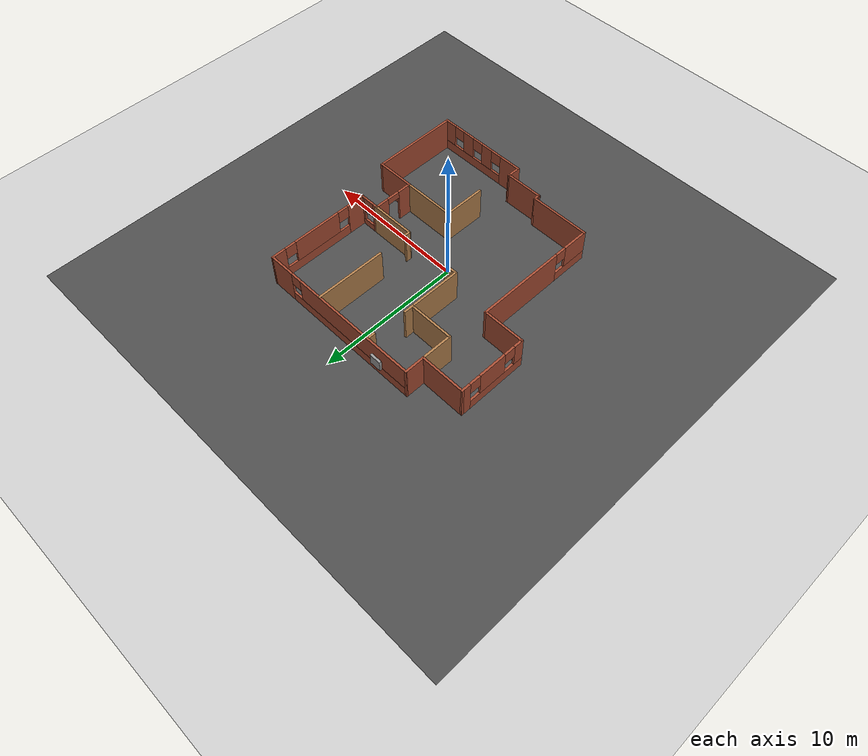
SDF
<sdf version="1.7">
 <world name="default">
  <light name="sun" type="directional">
   <pose>0 0 10 0 -0 0</pose>
   <diffuse>0.8 0.8 0.8 1</diffuse>
   <specular>0.2 0.2 0.2 1</specular>
   <attenuation>
    <range>1000</range>
    <constant>0.9</constant>
    <linear>0.01</linear>
    <quadratic>0.001</quadratic>
   </attenuation>
   <direction>-0.5 0.1 -0.9</direction>
   <spot><inner_angle>0</inner_angle><outer_angle>0</outer_angle><falloff>0</falloff></spot>
  </light>
  <model name="ground_plane">
   <static>1</static>
   <link name="link">
    <collision name="collision">
     <geometry><plane><normal>0 0 1</normal><size>100 100</size></plane></geometry>
     <surface><friction><ode><mu>100</mu><mu2>50</mu2></ode></friction></surface>
    </collision>
    <visual name="visual">
     <cast_shadows>0</cast_shadows>
     <geometry><plane><normal>0 0 1</normal><size>100 100</size></plane></geometry>
     <material>
      <script><uri>file://media/materials/scripts/gazebo.material</uri><name>Gazebo/Grey</name></script>
     </material>
    </visual>
   </link>
  </model>
  <gravity>0 0 -9.8</gravity>
  <magnetic_field>6e-06 2.3e-05 -4.2e-05</magnetic_field>
  <atmosphere type="adiabatic"/>
  <physics type="ode">
   <max_step_size>0.001</max_step_size>
   <real_time_factor>1</real_time_factor>
   <real_time_update_rate>1000</real_time_update_rate>
  </physics>
  <scene><ambient>0.4 0.4 0.4 1</ambient><background>0.7 0.7 0.7 1</background><shadows>1</shadows></scene>
  <spherical_coordinates>
   <surface_model>EARTH_WGS84</surface_model>
   <latitude_deg>0</latitude_deg>
   <longitude_deg>0</longitude_deg>
   <elevation>0</elevation>
   <heading_deg>0</heading_deg>
  </spherical_coordinates>
  <model name="house">
   <pose>0.09028 0.07914 0 0 -0 0</pose>
   <link name="Wall_0">
    <collision name="Wall_0_Collision">
     <geometry><box><size>3.25 0.15 2.5</size></box></geometry>
     <pose>0 0 1.25 0 -0 0</pose>
    </collision>
    <visual name="Wall_0_Visual">
     <pose>0 0 1.25 0 -0 0</pose>
     <geometry><box><size>3.25 0.15 2.5</size></box></geometry>
     <material>
      <script><uri>file://media/materials/scripts/gazebo.material</uri><name>Gazebo/Bricks</name></script>
      <ambient>1 1 1 1</ambient>
     </material>
     <meta><layer>0</layer></meta>
    </visual>
    <pose>-6.525 6.74982 0 0 -0 3.14159</pose>
   </link>
   <link name="Wall_1">
    <pose>-8.075 4.32482 0 0 -0 -1.5708</pose>
    <visual name="Wall_1_Visual_0">
     <pose>-2.16045 0 1.25 0 -0 0</pose>
     <geometry><box><size>0.679108 0.15 2.5</size></box></geometry>
     <material>
      <script><uri>file://media/materials/scripts/gazebo.material</uri><name>Gazebo/Bricks</name></script>
      <ambient>1 1 1 1</ambient>
     </material>
     <meta><layer>0</layer></meta>
    </visual>
    <collision name="Wall_1_Collision_0">
     <geometry><box><size>0.679108 0.15 2.5</size></box></geometry>
     <pose>-2.16045 0 1.25 0 -0 0</pose>
    </collision>
    <visual name="Wall_1_Visual_1">
     <pose>0.339554 0 0.375 0 -0 0</pose>
     <geometry><box><size>4.32089 0.15 0.75</size></box></geometry>
     <material>
      <script><uri>file://media/materials/scripts/gazebo.material</uri><name>Gazebo/Bricks</name></script>
      <ambient>1 1 1 1</ambient>
     </material>
     <meta><layer>0</layer></meta>
    </visual>
    <collision name="Wall_1_Collision_1">
     <geometry><box><size>4.32089 0.15 0.75</size></box></geometry>
     <pose>0.339554 0 0.375 0 -0 0</pose>
    </collision>
    <visual name="Wall_1_Visual_2">
     <pose>-0.008469 0 1.625 0 -0 0</pose>
     <geometry><box><size>2.02485 0.15 1.75</size></box></geometry>
     <material>
      <script><uri>file://media/materials/scripts/gazebo.material</uri><name>Gazebo/Bricks</name></script>
      <ambient>1 1 1 1</ambient>
     </material>
     <meta><layer>0</layer></meta>
    </visual>
    <collision name="Wall_1_Collision_2">
     <geometry><box><size>2.02485 0.15 1.75</size></box></geometry>
     <pose>-0.008469 0 1.625 0 -0 0</pose>
    </collision>
    <visual name="Wall_1_Visual_3">
     <pose>2.15198 0 1.625 0 -0 0</pose>
     <geometry><box><size>0.696045 0.15 1.75</size></box></geometry>
     <material>
      <script><uri>file://media/materials/scripts/gazebo.material</uri><name>Gazebo/Bricks</name></script>
      <ambient>1 1 1 1</ambient>
     </material>
     <meta><layer>0</layer></meta>
    </visual>
    <collision name="Wall_1_Collision_3">
     <geometry><box><size>0.696045 0.15 1.75</size></box></geometry>
     <pose>2.15198 0 1.625 0 -0 0</pose>
    </collision>
    <visual name="Wall_1_Visual_4">
     <pose>-1.42089 0 2.025 0 -0 0</pose>
     <geometry><box><size>0.8 0.15 0.95</size></box></geometry>
     <material>
      <script><uri>file://media/materials/scripts/gazebo.material</uri><name>Gazebo/Bricks</name></script>
      <ambient>1 1 1 1</ambient>
     </material>
     <meta><layer>0</layer></meta>
    </visual>
    <collision name="Wall_1_Collision_4">
     <geometry><box><size>0.8 0.15 0.95</size></box></geometry>
     <pose>-1.42089 0 2.025 0 -0 0</pose>
    </collision>
    <visual name="Wall_1_Visual_5">
     <pose>1.40396 0 2.025 0 -0 0</pose>
     <geometry><box><size>0.8 0.15 0.95</size></box></geometry>
     <material>
      <script><uri>file://media/materials/scripts/gazebo.material</uri><name>Gazebo/Bricks</name></script>
      <ambient>1 1 1 1</ambient>
     </material>
     <meta><layer>0</layer></meta>
    </visual>
    <collision name="Wall_1_Collision_5">
     <geometry><box><size>0.8 0.15 0.95</size></box></geometry>
     <pose>1.40396 0 2.025 0 -0 0</pose>
    </collision>
   </link>
   <link name="Wall_10">
    <collision name="Wall_10_Collision">
     <geometry><box><size>2.75 0.15 2.5</size></box></geometry>
     <pose>0 0 1.25 0 -0 0</pose>
    </collision>
    <visual name="Wall_10_Visual">
     <pose>0 0 1.25 0 -0 0</pose>
     <geometry><box><size>2.75 0.15 2.5</size></box></geometry>
     <material>
      <script><uri>file://media/materials/scripts/gazebo.material</uri><name>Gazebo/Bricks</name></script>
      <ambient>1 1 1 1</ambient>
     </material>
     <meta><layer>0</layer></meta>
    </visual>
    <pose>6.775 -2.05018 0 0 -0 3.14159</pose>
   </link>
   <link name="Wall_11">
    <pose>5.475 -0.625181 0 0 -0 1.5708</pose>
    <visual name="Wall_11_Visual_0">
     <pose>-0.971381 0 1.25 0 -0 0</pose>
     <geometry><box><size>1.05724 0.15 2.5</size></box></geometry>
     <material>
      <script><uri>file://media/materials/scripts/gazebo.material</uri><name>Gazebo/Bricks</name></script>
      <ambient>1 1 1 1</ambient>
     </material>
     <meta><layer>0</layer></meta>
    </visual>
    <collision name="Wall_11_Collision_0">
     <geometry><box><size>1.05724 0.15 2.5</size></box></geometry>
     <pose>-0.971381 0 1.25 0 -0 0</pose>
    </collision>
    <visual name="Wall_11_Visual_1">
     <pose>0.978619 0 1.25 0 -0 0</pose>
     <geometry><box><size>1.04276 0.15 2.5</size></box></geometry>
     <material>
      <script><uri>file://media/materials/scripts/gazebo.material</uri><name>Gazebo/Bricks</name></script>
      <ambient>1 1 1 1</ambient>
     </material>
     <meta><layer>0</layer></meta>
    </visual>
    <collision name="Wall_11_Collision_1">
     <geometry><box><size>1.04276 0.15 2.5</size></box></geometry>
     <pose>0.978619 0 1.25 0 -0 0</pose>
    </collision>
    <visual name="Wall_11_Visual_2">
     <pose>0.007238 0 2.25 0 -0 0</pose>
     <geometry><box><size>0.9 0.15 0.5</size></box></geometry>
     <material>
      <script><uri>file://media/materials/scripts/gazebo.material</uri><name>Gazebo/Bricks</name></script>
      <ambient>1 1 1 1</ambient>
     </material>
     <meta><layer>0</layer></meta>
    </visual>
    <collision name="Wall_11_Collision_2">
     <geometry><box><size>0.9 0.15 0.5</size></box></geometry>
     <pose>0.007238 0 2.25 0 -0 0</pose>
    </collision>
   </link>
   <link name="Wall_12">
    <pose>6.15 0.799819 0 0 -0 0</pose>
    <visual name="Wall_12_Visual_0">
     <pose>-0.552106 0 1.25 0 -0 0</pose>
     <geometry><box><size>0.395787 0.15 2.5</size></box></geometry>
     <material>
      <script><uri>file://media/materials/scripts/gazebo.material</uri><name>Gazebo/Bricks</name></script>
      <ambient>1 1 1 1</ambient>
     </material>
     <meta><layer>0</layer></meta>
    </visual>
    <collision name="Wall_12_Collision_0">
     <geometry><box><size>0.395787 0.15 2.5</size></box></geometry>
     <pose>-0.552106 0 1.25 0 -0 0</pose>
    </collision>
    <visual name="Wall_12_Visual_1">
     <pose>0.197894 0 0.25 0 -0 0</pose>
     <geometry><box><size>1.10421 0.15 0.5</size></box></geometry>
     <material>
      <script><uri>file://media/materials/scripts/gazebo.material</uri><name>Gazebo/Bricks</name></script>
      <ambient>1 1 1 1</ambient>
     </material>
     <meta><layer>0</layer></meta>
    </visual>
    <collision name="Wall_12_Collision_1">
     <geometry><box><size>1.10421 0.15 0.5</size></box></geometry>
     <pose>0.197894 0 0.25 0 -0 0</pose>
    </collision>
    <visual name="Wall_12_Visual_2">
     <pose>0.597894 0 1.5 0 -0 0</pose>
     <geometry><box><size>0.304213 0.15 2</size></box></geometry>
     <material>
      <script><uri>file://media/materials/scripts/gazebo.material</uri><name>Gazebo/Bricks</name></script>
      <ambient>1 1 1 1</ambient>
     </material>
     <meta><layer>0</layer></meta>
    </visual>
    <collision name="Wall_12_Collision_2">
     <geometry><box><size>0.304213 0.15 2</size></box></geometry>
     <pose>0.597894 0 1.5 0 -0 0</pose>
    </collision>
    <visual name="Wall_12_Visual_3">
     <pose>0.045787 0 1.9 0 -0 0</pose>
     <geometry><box><size>0.8 0.15 1.2</size></box></geometry>
     <material>
      <script><uri>file://media/materials/scripts/gazebo.material</uri><name>Gazebo/Bricks</name></script>
      <ambient>1 1 1 1</ambient>
     </material>
     <meta><layer>0</layer></meta>
    </visual>
    <collision name="Wall_12_Collision_3">
     <geometry><box><size>0.8 0.15 1.2</size></box></geometry>
     <pose>0.045787 0 1.9 0 -0 0</pose>
    </collision>
   </link>
   <link name="Wall_13">
    <pose>6.825 4.47482 0 0 -0 1.5708</pose>
    <visual name="Wall_13_Visual_0">
     <pose>-3.05778 0 1.25 0 -0 0</pose>
     <geometry><box><size>1.38445 0.15 2.5</size></box></geometry>
     <material>
      <script><uri>file://media/materials/scripts/gazebo.material</uri><name>Gazebo/Bricks</name></script>
      <ambient>1 1 1 1</ambient>
     </material>
     <meta><layer>0</layer></meta>
    </visual>
    <collision name="Wall_13_Collision_0">
     <geometry><box><size>1.38445 0.15 2.5</size></box></geometry>
     <pose>-3.05778 0 1.25 0 -0 0</pose>
    </collision>
    <visual name="Wall_13_Visual_1">
     <pose>0.692223 0 0.375 0 -0 0</pose>
     <geometry><box><size>6.11555 0.15 0.75</size></box></geometry>
     <material>
      <script><uri>file://media/materials/scripts/gazebo.material</uri><name>Gazebo/Bricks</name></script>
      <ambient>1 1 1 1</ambient>
     </material>
     <meta><layer>0</layer></meta>
    </visual>
    <collision name="Wall_13_Collision_1">
     <geometry><box><size>6.11555 0.15 0.75</size></box></geometry>
     <pose>0.692223 0 0.375 0 -0 0</pose>
    </collision>
    <visual name="Wall_13_Visual_2">
     <pose>0.178592 0 1.625 0 -0 0</pose>
     <geometry><box><size>3.48829 0.15 1.75</size></box></geometry>
     <material>
      <script><uri>file://media/materials/scripts/gazebo.material</uri><name>Gazebo/Bricks</name></script>
      <ambient>1 1 1 1</ambient>
     </material>
     <meta><layer>0</layer></meta>
    </visual>
    <collision name="Wall_13_Collision_2">
     <geometry><box><size>3.48829 0.15 1.75</size></box></geometry>
     <pose>0.178592 0 1.625 0 -0 0</pose>
    </collision>
    <visual name="Wall_13_Visual_3">
     <pose>3.23637 0 1.625 0 -0 0</pose>
     <geometry><box><size>1.02726 0.15 1.75</size></box></geometry>
     <material>
      <script><uri>file://media/materials/scripts/gazebo.material</uri><name>Gazebo/Bricks</name></script>
      <ambient>1 1 1 1</ambient>
     </material>
     <meta><layer>0</layer></meta>
    </visual>
    <collision name="Wall_13_Collision_3">
     <geometry><box><size>1.02726 0.15 1.75</size></box></geometry>
     <pose>3.23637 0 1.625 0 -0 0</pose>
    </collision>
    <visual name="Wall_13_Visual_4">
     <pose>-1.96555 0 2.025 0 -0 0</pose>
     <geometry><box><size>0.8 0.15 0.95</size></box></geometry>
     <material>
      <script><uri>file://media/materials/scripts/gazebo.material</uri><name>Gazebo/Bricks</name></script>
      <ambient>1 1 1 1</ambient>
     </material>
     <meta><layer>0</layer></meta>
    </visual>
    <collision name="Wall_13_Collision_4">
     <geometry><box><size>0.8 0.15 0.95</size></box></geometry>
     <pose>-1.96555 0 2.025 0 -0 0</pose>
    </collision>
    <visual name="Wall_13_Visual_5">
     <pose>2.32274 0 2.025 0 -0 0</pose>
     <geometry><box><size>0.8 0.15 0.95</size></box></geometry>
     <material>
      <script><uri>file://media/materials/scripts/gazebo.material</uri><name>Gazebo/Bricks</name></script>
      <ambient>1 1 1 1</ambient>
     </material>
     <meta><layer>0</layer></meta>
    </visual>
    <collision name="Wall_13_Collision_5">
     <geometry><box><size>0.8 0.15 0.95</size></box></geometry>
     <pose>2.32274 0 2.025 0 -0 0</pose>
    </collision>
   </link>
   <link name="Wall_14">
    <pose>0.92287 8.12123 0 0 -0 -3.13675</pose>
    <visual name="Wall_14_Visual_0">
     <pose>-5.02359 0 1.25 0 -0 0</pose>
     <geometry><box><size>1.90722 0.15 2.5</size></box></geometry>
     <material>
      <script><uri>file://media/materials/scripts/gazebo.material</uri><name>Gazebo/Bricks</name></script>
      <ambient>1 1 1 1</ambient>
     </material>
     <meta><layer>0</layer></meta>
    </visual>
    <collision name="Wall_14_Collision_0">
     <geometry><box><size>1.90722 0.15 2.5</size></box></geometry>
     <pose>-5.02359 0 1.25 0 -0 0</pose>
    </collision>
    <visual name="Wall_14_Visual_1">
     <pose>0.953612 0 0.375 0 -0 0</pose>
     <geometry><box><size>10.0472 0.15 0.75</size></box></geometry>
     <material>
      <script><uri>file://media/materials/scripts/gazebo.material</uri><name>Gazebo/Bricks</name></script>
      <ambient>1 1 1 1</ambient>
     </material>
     <meta><layer>0</layer></meta>
    </visual>
    <collision name="Wall_14_Collision_1">
     <geometry><box><size>10.0472 0.15 0.75</size></box></geometry>
     <pose>0.953612 0 0.375 0 -0 0</pose>
    </collision>
    <visual name="Wall_14_Visual_2">
     <pose>1.35361 0 1.625 0 -0 0</pose>
     <geometry><box><size>9.24718 0.15 1.75</size></box></geometry>
     <material>
      <script><uri>file://media/materials/scripts/gazebo.material</uri><name>Gazebo/Bricks</name></script>
      <ambient>1 1 1 1</ambient>
     </material>
     <meta><layer>0</layer></meta>
    </visual>
    <collision name="Wall_14_Collision_2">
     <geometry><box><size>9.24718 0.15 1.75</size></box></geometry>
     <pose>1.35361 0 1.625 0 -0 0</pose>
    </collision>
    <visual name="Wall_14_Visual_3">
     <pose>-3.66997 0 2.025 0 -0 0</pose>
     <geometry><box><size>0.8 0.15 0.95</size></box></geometry>
     <material>
      <script><uri>file://media/materials/scripts/gazebo.material</uri><name>Gazebo/Bricks</name></script>
      <ambient>1 1 1 1</ambient>
     </material>
     <meta><layer>0</layer></meta>
    </visual>
    <collision name="Wall_14_Collision_3">
     <geometry><box><size>0.8 0.15 0.95</size></box></geometry>
     <pose>-3.66997 0 2.025 0 -0 0</pose>
    </collision>
   </link>
   <link name="Wall_15">
    <collision name="Wall_15_Collision">
     <geometry><box><size>1.5 0.15 2.5</size></box></geometry>
     <pose>0 0 1.25 0 -0 0</pose>
    </collision>
    <visual name="Wall_15_Visual">
     <pose>0 0 1.25 0 -0 0</pose>
     <geometry><box><size>1.5 0.15 2.5</size></box></geometry>
     <material>
      <script><uri>file://media/materials/scripts/gazebo.material</uri><name>Gazebo/Bricks</name></script>
      <ambient>1 1 1 1</ambient>
     </material>
     <meta><layer>0</layer></meta>
    </visual>
    <pose>-4.97926 7.42336 0 0 -0 -1.5708</pose>
   </link>
   <link name="Wall_17">
    <collision name="Wall_17_Collision">
     <geometry><box><size>2.25 0.15 2.5</size></box></geometry>
     <pose>0 0 1.25 0 -0 0</pose>
    </collision>
    <visual name="Wall_17_Visual">
     <pose>0 0 1.25 0 -0 0</pose>
     <geometry><box><size>2.25 0.15 2.5</size></box></geometry>
     <material>
      <script><uri>file://media/materials/scripts/gazebo.material</uri><name>Gazebo/Wood</name></script>
      <ambient>1 1 1 1</ambient>
     </material>
     <meta><layer>0</layer></meta>
    </visual>
    <pose>-4.97926 5.69836 0 0 -0 -1.5708</pose>
   </link>
   <link name="Wall_18">
    <collision name="Wall_18_Collision">
     <geometry><box><size>3.25 0.15 2.5</size></box></geometry>
     <pose>0 0 1.25 0 -0 0</pose>
    </collision>
    <visual name="Wall_18_Visual">
     <pose>0 0 1.25 0 -0 0</pose>
     <geometry><box><size>3.25 0.15 2.5</size></box></geometry>
     <material>
      <script><uri>file://media/materials/scripts/gazebo.material</uri><name>Gazebo/Wood</name></script>
      <ambient>1 1 1 1</ambient>
     </material>
     <meta><layer>0</layer></meta>
    </visual>
    <pose>-3.42926 4.64836 0 0 -0 0</pose>
   </link>
   <link name="Wall_2">
    <collision name="Wall_2_Collision">
     <geometry><box><size>3 0.15 2.5</size></box></geometry>
     <pose>0 0 1.25 0 -0 0</pose>
    </collision>
    <visual name="Wall_2_Visual">
     <pose>0 0 1.25 0 -0 0</pose>
     <geometry><box><size>3 0.15 2.5</size></box></geometry>
     <material>
      <script><uri>file://media/materials/scripts/gazebo.material</uri><name>Gazebo/Bricks</name></script>
      <ambient>1 1 1 1</ambient>
     </material>
     <meta><layer>0</layer></meta>
    </visual>
    <pose>-6.65 1.89982 0 0 -0 0</pose>
   </link>
   <link name="Wall_20">
    <collision name="Wall_20_Collision">
     <geometry><box><size>0.75 0.15 2.5</size></box></geometry>
     <pose>0 0 1.25 0 -0 0</pose>
    </collision>
    <visual name="Wall_20_Visual">
     <pose>0 0 1.25 0 -0 0</pose>
     <geometry><box><size>0.75 0.15 2.5</size></box></geometry>
     <material>
      <script><uri>file://media/materials/scripts/gazebo.material</uri><name>Gazebo/Wood</name></script>
      <ambient>1 1 1 1</ambient>
     </material>
     <meta><layer>0</layer></meta>
    </visual>
    <pose>-1.88386 4.94858 0 0 -0 1.5708</pose>
   </link>
   <link name="Wall_22">
    <collision name="Wall_22_Collision">
     <geometry><box><size>0.5 0.15 2.5</size></box></geometry>
     <pose>0 0 1.25 0 -0 0</pose>
    </collision>
    <visual name="Wall_22_Visual">
     <pose>0 0 1.25 0 -0 0</pose>
     <geometry><box><size>0.5 0.15 2.5</size></box></geometry>
     <material>
      <script><uri>file://media/materials/scripts/gazebo.material</uri><name>Gazebo/Wood</name></script>
      <ambient>1 1 1 1</ambient>
     </material>
     <meta><layer>0</layer></meta>
    </visual>
    <pose>-1.77212 7.78882 0 0 -0 1.5708</pose>
   </link>
   <link name="Wall_25">
    <collision name="Wall_25_Collision">
     <geometry><box><size>3.75 0.15 2.5</size></box></geometry>
     <pose>0 0 1.25 0 -0 0</pose>
    </collision>
    <visual name="Wall_25_Visual">
     <pose>0 0 1.25 0 -0 0</pose>
     <geometry><box><size>3.75 0.15 2.5</size></box></geometry>
     <material>
      <script><uri>file://media/materials/scripts/gazebo.material</uri><name>Gazebo/Wood</name></script>
      <ambient>1 1 1 1</ambient>
     </material>
     <meta><layer>0</layer></meta>
    </visual>
    <pose>-1.88386 2.84858 0 0 -0 -1.5708</pose>
   </link>
   <link name="Wall_26">
    <collision name="Wall_26_Collision">
     <geometry><box><size>1 0.15 2.5</size></box></geometry>
     <pose>0 0 1.25 0 -0 0</pose>
    </collision>
    <visual name="Wall_26_Visual">
     <pose>0 0 1.25 0 -0 0</pose>
     <geometry><box><size>1 0.15 2.5</size></box></geometry>
     <material>
      <script><uri>file://media/materials/scripts/gazebo.material</uri><name>Gazebo/Wood</name></script>
      <ambient>1 1 1 1</ambient>
     </material>
     <meta><layer>0</layer></meta>
    </visual>
    <pose>-1.45886 1.04858 0 0 -0 0</pose>
   </link>
   <link name="Wall_28">
    <collision name="Wall_28_Collision">
     <geometry><box><size>5 0.15 2.5</size></box></geometry>
     <pose>0 0 1.25 0 -0 0</pose>
    </collision>
    <visual name="Wall_28_Visual">
     <pose>0 0 1.25 0 -0 0</pose>
     <geometry><box><size>5 0.15 2.5</size></box></geometry>
     <material>
      <script><uri>file://media/materials/scripts/gazebo.material</uri><name>Gazebo/Wood</name></script>
      <ambient>1 1 1 1</ambient>
     </material>
     <meta><layer>0</layer></meta>
    </visual>
    <pose>2.45282 5.68605 0 0 -0 1.5708</pose>
   </link>
   <link name="Wall_3">
    <pose>-5.225 -2.52518 0 0 -0 -1.5708</pose>
    <visual name="Wall_3_Visual_0">
     <pose>-1.34785 0 1.25 0 -0 0</pose>
     <geometry><box><size>6.30431 0.15 2.5</size></box></geometry>
     <material>
      <script><uri>file://media/materials/scripts/gazebo.material</uri><name>Gazebo/Bricks</name></script>
      <ambient>1 1 1 1</ambient>
     </material>
     <meta><layer>0</layer></meta>
    </visual>
    <collision name="Wall_3_Collision_0">
     <geometry><box><size>6.30431 0.15 2.5</size></box></geometry>
     <pose>-1.34785 0 1.25 0 -0 0</pose>
    </collision>
    <visual name="Wall_3_Visual_1">
     <pose>3.15215 0 0.375 0 -0 0</pose>
     <geometry><box><size>2.69569 0.15 0.75</size></box></geometry>
     <material>
      <script><uri>file://media/materials/scripts/gazebo.material</uri><name>Gazebo/Bricks</name></script>
      <ambient>1 1 1 1</ambient>
     </material>
     <meta><layer>0</layer></meta>
    </visual>
    <collision name="Wall_3_Collision_1">
     <geometry><box><size>2.69569 0.15 0.75</size></box></geometry>
     <pose>3.15215 0 0.375 0 -0 0</pose>
    </collision>
    <visual name="Wall_3_Visual_2">
     <pose>3.55215 0 1.625 0 -0 0</pose>
     <geometry><box><size>1.89569 0.15 1.75</size></box></geometry>
     <material>
      <script><uri>file://media/materials/scripts/gazebo.material</uri><name>Gazebo/Bricks</name></script>
      <ambient>1 1 1 1</ambient>
     </material>
     <meta><layer>0</layer></meta>
    </visual>
    <collision name="Wall_3_Collision_2">
     <geometry><box><size>1.89569 0.15 1.75</size></box></geometry>
     <pose>3.55215 0 1.625 0 -0 0</pose>
    </collision>
    <visual name="Wall_3_Visual_3">
     <pose>2.20431 0 2.025 0 -0 0</pose>
     <geometry><box><size>0.8 0.15 0.95</size></box></geometry>
     <material>
      <script><uri>file://media/materials/scripts/gazebo.material</uri><name>Gazebo/Bricks</name></script>
      <ambient>1 1 1 1</ambient>
     </material>
     <meta><layer>0</layer></meta>
    </visual>
    <collision name="Wall_3_Collision_3">
     <geometry><box><size>0.8 0.15 0.95</size></box></geometry>
     <pose>2.20431 0 2.025 0 -0 0</pose>
    </collision>
   </link>
   <link name="Wall_30">
    <collision name="Wall_30_Collision">
     <geometry><box><size>0.432914 0.15 2.5</size></box></geometry>
     <pose>0 0 1.25 0 -0 0</pose>
    </collision>
    <visual name="Wall_30_Visual">
     <pose>0 0 1.25 0 -0 0</pose>
     <geometry><box><size>0.432914 0.15 2.5</size></box></geometry>
     <material>
      <script><uri>file://media/materials/scripts/gazebo.material</uri><name>Gazebo/Wood</name></script>
      <ambient>1 1 1 1</ambient>
     </material>
     <meta><layer>0</layer></meta>
    </visual>
    <pose>2.44967 0.961972 0 0 -0 -1.51701</pose>
   </link>
   <link name="Wall_31">
    <collision name="Wall_31_Collision">
     <geometry><box><size>3.25 0.15 2.5</size></box></geometry>
     <pose>0 0 1.25 0 -0 0</pose>
    </collision>
    <visual name="Wall_31_Visual">
     <pose>0 0 1.25 0 -0 0</pose>
     <geometry><box><size>3.25 0.15 2.5</size></box></geometry>
     <material>
      <script><uri>file://media/materials/scripts/gazebo.material</uri><name>Gazebo/Wood</name></script>
      <ambient>1 1 1 1</ambient>
     </material>
     <meta><layer>0</layer></meta>
    </visual>
    <pose>4.00727 0.805511 0 0 -0 0</pose>
   </link>
   <link name="Wall_33">
    <collision name="Wall_33_Collision">
     <geometry><box><size>3.75 0.15 2.5</size></box></geometry>
     <pose>0 0 1.25 0 -0 0</pose>
    </collision>
    <visual name="Wall_33_Visual">
     <pose>0 0 1.25 0 -0 0</pose>
     <geometry><box><size>3.75 0.15 2.5</size></box></geometry>
     <material>
      <script><uri>file://media/materials/scripts/gazebo.material</uri><name>Gazebo/Wood</name></script>
      <ambient>1 1 1 1</ambient>
     </material>
     <meta><layer>0</layer></meta>
    </visual>
    <pose>3.675 -2.05018 0 0 -0 3.14159</pose>
   </link>
   <link name="Wall_34">
    <collision name="Wall_34_Collision">
     <geometry><box><size>3 0.15 2.5</size></box></geometry>
     <pose>0 0 1.25 0 -0 0</pose>
    </collision>
    <visual name="Wall_34_Visual">
     <pose>0 0 1.25 0 -0 0</pose>
     <geometry><box><size>3 0.15 2.5</size></box></geometry>
     <material>
      <script><uri>file://media/materials/scripts/gazebo.material</uri><name>Gazebo/Wood</name></script>
      <ambient>1 1 1 1</ambient>
     </material>
     <meta><layer>0</layer></meta>
    </visual>
    <pose>1.875 -3.47518 0 0 -0 -1.5708</pose>
   </link>
   <link name="Wall_4">
    <collision name="Wall_4_Collision">
     <geometry><box><size>4.25 0.15 2.5</size></box></geometry>
     <pose>0 0 1.25 0 -0 0</pose>
    </collision>
    <visual name="Wall_4_Visual">
     <pose>0 0 1.25 0 -0 0</pose>
     <geometry><box><size>4.25 0.15 2.5</size></box></geometry>
     <material>
      <script><uri>file://media/materials/scripts/gazebo.material</uri><name>Gazebo/Bricks</name></script>
      <ambient>1 1 1 1</ambient>
     </material>
     <meta><layer>0</layer></meta>
    </visual>
    <pose>-3.175 -6.95018 0 0 -0 0</pose>
   </link>
   <link name="Wall_5">
    <collision name="Wall_5_Collision">
     <geometry><box><size>0.5 0.15 2.5</size></box></geometry>
     <pose>0 0 1.25 0 -0 0</pose>
    </collision>
    <visual name="Wall_5_Visual">
     <pose>0 0 1.25 0 -0 0</pose>
     <geometry><box><size>0.5 0.15 2.5</size></box></geometry>
     <material>
      <script><uri>file://media/materials/scripts/gazebo.material</uri><name>Gazebo/Bricks</name></script>
      <ambient>1 1 1 1</ambient>
     </material>
     <meta><layer>0</layer></meta>
    </visual>
    <pose>-1.125 -7.12518 0 0 -0 -1.5708</pose>
   </link>
   <link name="Wall_6">
    <collision name="Wall_6_Collision">
     <geometry><box><size>2.75 0.15 2.5</size></box></geometry>
     <pose>0 0 1.25 0 -0 0</pose>
    </collision>
    <visual name="Wall_6_Visual">
     <pose>0 0 1.25 0 -0 0</pose>
     <geometry><box><size>2.75 0.15 2.5</size></box></geometry>
     <material>
      <script><uri>file://media/materials/scripts/gazebo.material</uri><name>Gazebo/Bricks</name></script>
      <ambient>1 1 1 1</ambient>
     </material>
     <meta><layer>0</layer></meta>
    </visual>
    <pose>0.175 -7.30018 0 0 -0 0</pose>
   </link>
   <link name="Wall_7">
    <collision name="Wall_7_Collision">
     <geometry><box><size>1 0.15 2.5</size></box></geometry>
     <pose>0 0 1.25 0 -0 0</pose>
    </collision>
    <visual name="Wall_7_Visual">
     <pose>0 0 1.25 0 -0 0</pose>
     <geometry><box><size>1 0.15 2.5</size></box></geometry>
     <material>
      <script><uri>file://media/materials/scripts/gazebo.material</uri><name>Gazebo/Bricks</name></script>
      <ambient>1 1 1 1</ambient>
     </material>
     <meta><layer>0</layer></meta>
    </visual>
    <pose>1.475 -7.72518 0 0 -0 -1.5708</pose>
   </link>
   <link name="Wall_8">
    <pose>4.775 -8.15018 0 0 -0 0</pose>
    <visual name="Wall_8_Visual_0">
     <pose>-2.55743 0 1.25 0 -0 0</pose>
     <geometry><box><size>1.63514 0.15 2.5</size></box></geometry>
     <material>
      <script><uri>file://media/materials/scripts/gazebo.material</uri><name>Gazebo/Bricks</name></script>
      <ambient>1 1 1 1</ambient>
     </material>
     <meta><layer>0</layer></meta>
    </visual>
    <collision name="Wall_8_Collision_0">
     <geometry><box><size>1.63514 0.15 2.5</size></box></geometry>
     <pose>-2.55743 0 1.25 0 -0 0</pose>
    </collision>
    <visual name="Wall_8_Visual_1">
     <pose>0.817571 0 0.375 0 -0 0</pose>
     <geometry><box><size>5.11486 0.15 0.75</size></box></geometry>
     <material>
      <script><uri>file://media/materials/scripts/gazebo.material</uri><name>Gazebo/Bricks</name></script>
      <ambient>1 1 1 1</ambient>
     </material>
     <meta><layer>0</layer></meta>
    </visual>
    <collision name="Wall_8_Collision_1">
     <geometry><box><size>5.11486 0.15 0.75</size></box></geometry>
     <pose>0.817571 0 0.375 0 -0 0</pose>
    </collision>
    <visual name="Wall_8_Visual_2">
     <pose>-0.495567 0 1.625 0 -0 0</pose>
     <geometry><box><size>0.888581 0.15 1.75</size></box></geometry>
     <material>
      <script><uri>file://media/materials/scripts/gazebo.material</uri><name>Gazebo/Bricks</name></script>
      <ambient>1 1 1 1</ambient>
     </material>
     <meta><layer>0</layer></meta>
    </visual>
    <collision name="Wall_8_Collision_2">
     <geometry><box><size>0.888581 0.15 1.75</size></box></geometry>
     <pose>-0.495567 0 1.625 0 -0 0</pose>
    </collision>
    <visual name="Wall_8_Visual_3">
     <pose>1.20721 0 1.625 0 -0 0</pose>
     <geometry><box><size>0.91698 0.15 1.75</size></box></geometry>
     <material>
      <script><uri>file://media/materials/scripts/gazebo.material</uri><name>Gazebo/Bricks</name></script>
      <ambient>1 1 1 1</ambient>
     </material>
     <meta><layer>0</layer></meta>
    </visual>
    <collision name="Wall_8_Collision_3">
     <geometry><box><size>0.91698 0.15 1.75</size></box></geometry>
     <pose>1.20721 0 1.625 0 -0 0</pose>
    </collision>
    <visual name="Wall_8_Visual_4">
     <pose>2.92035 0 1.625 0 -0 0</pose>
     <geometry><box><size>0.909297 0.15 1.75</size></box></geometry>
     <material>
      <script><uri>file://media/materials/scripts/gazebo.material</uri><name>Gazebo/Bricks</name></script>
      <ambient>1 1 1 1</ambient>
     </material>
     <meta><layer>0</layer></meta>
    </visual>
    <collision name="Wall_8_Collision_4">
     <geometry><box><size>0.909297 0.15 1.75</size></box></geometry>
     <pose>2.92035 0 1.625 0 -0 0</pose>
    </collision>
    <visual name="Wall_8_Visual_5">
     <pose>-1.33986 0 2.025 0 -0 0</pose>
     <geometry><box><size>0.8 0.15 0.95</size></box></geometry>
     <material>
      <script><uri>file://media/materials/scripts/gazebo.material</uri><name>Gazebo/Bricks</name></script>
      <ambient>1 1 1 1</ambient>
     </material>
     <meta><layer>0</layer></meta>
    </visual>
    <collision name="Wall_8_Collision_5">
     <geometry><box><size>0.8 0.15 0.95</size></box></geometry>
     <pose>-1.33986 0 2.025 0 -0 0</pose>
    </collision>
    <visual name="Wall_8_Visual_6">
     <pose>0.348723 0 2.025 0 -0 0</pose>
     <geometry><box><size>0.8 0.15 0.95</size></box></geometry>
     <material>
      <script><uri>file://media/materials/scripts/gazebo.material</uri><name>Gazebo/Bricks</name></script>
      <ambient>1 1 1 1</ambient>
     </material>
     <meta><layer>0</layer></meta>
    </visual>
    <collision name="Wall_8_Collision_6">
     <geometry><box><size>0.8 0.15 0.95</size></box></geometry>
     <pose>0.348723 0 2.025 0 -0 0</pose>
    </collision>
    <visual name="Wall_8_Visual_7">
     <pose>2.0657 0 2.025 0 -0 0</pose>
     <geometry><box><size>0.8 0.15 0.95</size></box></geometry>
     <material>
      <script><uri>file://media/materials/scripts/gazebo.material</uri><name>Gazebo/Bricks</name></script>
      <ambient>1 1 1 1</ambient>
     </material>
     <meta><layer>0</layer></meta>
    </visual>
    <collision name="Wall_8_Collision_7">
     <geometry><box><size>0.8 0.15 0.95</size></box></geometry>
     <pose>2.0657 0 2.025 0 -0 0</pose>
    </collision>
   </link>
   <link name="Wall_9">
    <collision name="Wall_9_Collision">
     <geometry><box><size>6.25 0.15 2.5</size></box></geometry>
     <pose>0 0 1.25 0 -0 0</pose>
    </collision>
    <visual name="Wall_9_Visual">
     <pose>0 0 1.25 0 -0 0</pose>
     <geometry><box><size>6.25 0.15 2.5</size></box></geometry>
     <material>
      <script><uri>file://media/materials/scripts/gazebo.material</uri><name>Gazebo/Bricks</name></script>
      <ambient>1 1 1 1</ambient>
     </material>
     <meta><layer>0</layer></meta>
    </visual>
    <pose>8.075 -5.10018 0 0 -0 1.5708</pose>
   </link>
   <link name="Window_9">
    <collision name="Window_9_Collision">
     <geometry><box><size>0.8 0.17 0.8</size></box></geometry>
     <pose>0 0 0.4 0 -0 0</pose>
    </collision>
    <visual name="Window_9_Visual">
     <pose>0 0 0.4 0 -0 0</pose>
     <geometry><box><size>0.8 0.17 0.8</size></box></geometry>
     <material>
      <script><uri>file://media/materials/scripts/gazebo.material</uri><name>Gazebo/Grey</name></script>
     </material>
    </visual>
    <pose>-2.60963 8.29441 0.75 0 -0 0</pose>
   </link>
   <static>1</static>
  </model>
  <model name="asphalt_plane">
   <static>1</static>
   <link name="link">
    <collision name="collision"><geometry><box><size>35.3465 35.5294 0.1</size></box></geometry></collision>
    <visual name="visual">
     <cast_shadows>0</cast_shadows>
     <geometry><box><size>35.3465 35.5294 0.1</size></box></geometry>
     <material>
      <script>
       <uri>model://asphalt_plane/materials/scripts</uri>
       <uri>model://asphalt_plane/materials/textures</uri>
       <name>vrc/asphalt</name>
      </script>
     </material>
    </visual>
   </link>
   <pose>0.001755 0.575816 -0.1 0 -0 0</pose>
  </model>
  <model name="bookshelf">
   <static>1</static>
   <link name="link">
    <inertial><mass>1</mass></inertial>
    <collision name="back">
     <pose>0 0.005 0.6 0 -0 0</pose>
     <geometry><box><size>0.9 0.01 1.2</size></box></geometry>
    </collision>
    <visual name="visual1">
     <pose>0 0.005 0.6 0 -0 0</pose>
     <geometry><box><size>0.9 0.01 1.2</size></box></geometry>
     <material>
      <script><uri>file://media/materials/scripts/gazebo.material</uri><name>Gazebo/Wood</name></script>
     </material>
    </visual>
    <collision name="left_side">
     <pose>0.45 -0.195 0.6 0 -0 0</pose>
     <geometry><box><size>0.02 0.4 1.2</size></box></geometry>
    </collision>
    <visual name="visual2">
     <pose>0.45 -0.195 0.6 0 -0 0</pose>
     <geometry><box><size>0.02 0.4 1.2</size></box></geometry>
     <material>
      <script><uri>file://media/materials/scripts/gazebo.material</uri><name>Gazebo/Wood</name></script>
     </material>
    </visual>
    <collision name="right_side">
     <pose>-0.45 -0.195 0.6 0 -0 0</pose>
     <geometry><box><size>0.02 0.4 1.2</size></box></geometry>
    </collision>
    <visual name="visual3">
     <pose>-0.45 -0.195 0.6 0 -0 0</pose>
     <geometry><box><size>0.02 0.4 1.2</size></box></geometry>
     <material>
      <script><uri>file://media/materials/scripts/gazebo.material</uri><name>Gazebo/Wood</name></script>
     </material>
    </visual>
    <collision name="bottom">
     <pose>0 -0.195 0.03 0 -0 0</pose>
     <geometry><box><size>0.88 0.4 0.06</size></box></geometry>
    </collision>
    <visual name="visual4">
     <pose>0 -0.195 0.03 0 -0 0</pose>
     <geometry><box><size>0.88 0.4 0.06</size></box></geometry>
     <material>
      <script><uri>file://media/materials/scripts/gazebo.material</uri><name>Gazebo/Wood</name></script>
     </material>
    </visual>
    <collision name="top">
     <pose>0 -0.195 1.19 0 -0 0</pose>
     <geometry><box><size>0.88 0.4 0.02</size></box></geometry>
    </collision>
    <visual name="visual5">
     <pose>0 -0.195 1.19 0 -0 0</pose>
     <geometry><box><size>0.88 0.4 0.02</size></box></geometry>
     <material>
      <script><uri>file://media/materials/scripts/gazebo.material</uri><name>Gazebo/Wood</name></script>
     </material>
    </visual>
    <collision name="low_shelf">
     <pose>0 -0.195 0.43 0 -0 0</pose>
     <geometry><box><size>0.88 0.4 0.02</size></box></geometry>
    </collision>
    <visual name="visual6">
     <pose>0 -0.195 0.43 0 -0 0</pose>
     <geometry><box><size>0.88 0.4 0.02</size></box></geometry>
     <material>
      <script><uri>file://media/materials/scripts/gazebo.material</uri><name>Gazebo/Wood</name></script>
     </material>
    </visual>
    <collision name="high_shelf">
     <pose>0 -0.195 0.8 0 -0 0</pose>
     <geometry><box><size>0.88 0.4 0.02</size></box></geometry>
    </collision>
    <visual name="visual7">
     <pose>0 -0.195 0.8 0 -0 0</pose>
     <geometry><box><size>0.88 0.4 0.02</size></box></geometry>
     <material>
      <script><uri>file://media/materials/scripts/gazebo.material</uri><name>Gazebo/Wood</name></script>
     </material>
    </visual>
   </link>
   <pose>-3.28004 4.64924 0 0 -0 0</pose>
  </model>
  <model name="bookshelf_0">
   <static>1</static>
   <link name="link">
    <inertial><mass>1</mass></inertial>
    <collision name="back">
     <pose>0 0.005 0.6 0 -0 0</pose>
     <geometry><box><size>0.9 0.01 1.2</size></box></geometry>
    </collision>
    <visual name="visual1">
     <pose>0 0.005 0.6 0 -0 0</pose>
     <geometry><box><size>0.9 0.01 1.2</size></box></geometry>
     <material>
      <script><uri>file://media/materials/scripts/gazebo.material</uri><name>Gazebo/Wood</name></script>
     </material>
    </visual>
    <collision name="left_side">
     <pose>0.45 -0.195 0.6 0 -0 0</pose>
     <geometry><box><size>0.02 0.4 1.2</size></box></geometry>
    </collision>
    <visual name="visual2">
     <pose>0.45 -0.195 0.6 0 -0 0</pose>
     <geometry><box><size>0.02 0.4 1.2</size></box></geometry>
     <material>
      <script><uri>file://media/materials/scripts/gazebo.material</uri><name>Gazebo/Wood</name></script>
     </material>
    </visual>
    <collision name="right_side">
     <pose>-0.45 -0.195 0.6 0 -0 0</pose>
     <geometry><box><size>0.02 0.4 1.2</size></box></geometry>
    </collision>
    <visual name="visual3">
     <pose>-0.45 -0.195 0.6 0 -0 0</pose>
     <geometry><box><size>0.02 0.4 1.2</size></box></geometry>
     <material>
      <script><uri>file://media/materials/scripts/gazebo.material</uri><name>Gazebo/Wood</name></script>
     </material>
    </visual>
    <collision name="bottom">
     <pose>0 -0.195 0.03 0 -0 0</pose>
     <geometry><box><size>0.88 0.4 0.06</size></box></geometry>
    </collision>
    <visual name="visual4">
     <pose>0 -0.195 0.03 0 -0 0</pose>
     <geometry><box><size>0.88 0.4 0.06</size></box></geometry>
     <material>
      <script><uri>file://media/materials/scripts/gazebo.material</uri><name>Gazebo/Wood</name></script>
     </material>
    </visual>
    <collision name="top">
     <pose>0 -0.195 1.19 0 -0 0</pose>
     <geometry><box><size>0.88 0.4 0.02</size></box></geometry>
    </collision>
    <visual name="visual5">
     <pose>0 -0.195 1.19 0 -0 0</pose>
     <geometry><box><size>0.88 0.4 0.02</size></box></geometry>
     <material>
      <script><uri>file://media/materials/scripts/gazebo.material</uri><name>Gazebo/Wood</name></script>
     </material>
    </visual>
    <collision name="low_shelf">
     <pose>0 -0.195 0.43 0 -0 0</pose>
     <geometry><box><size>0.88 0.4 0.02</size></box></geometry>
    </collision>
    <visual name="visual6">
     <pose>0 -0.195 0.43 0 -0 0</pose>
     <geometry><box><size>0.88 0.4 0.02</size></box></geometry>
     <material>
      <script><uri>file://media/materials/scripts/gazebo.material</uri><name>Gazebo/Wood</name></script>
     </material>
    </visual>
    <collision name="high_shelf">
     <pose>0 -0.195 0.8 0 -0 0</pose>
     <geometry><box><size>0.88 0.4 0.02</size></box></geometry>
    </collision>
    <visual name="visual7">
     <pose>0 -0.195 0.8 0 -0 0</pose>
     <geometry><box><size>0.88 0.4 0.02</size></box></geometry>
     <material>
      <script><uri>file://media/materials/scripts/gazebo.material</uri><name>Gazebo/Wood</name></script>
     </material>
    </visual>
   </link>
   <pose>4.23334 -2.06807 0 0 -0 0</pose>
  </model>
  <audio><device>default</device></audio>
 </world>
</sdf>
